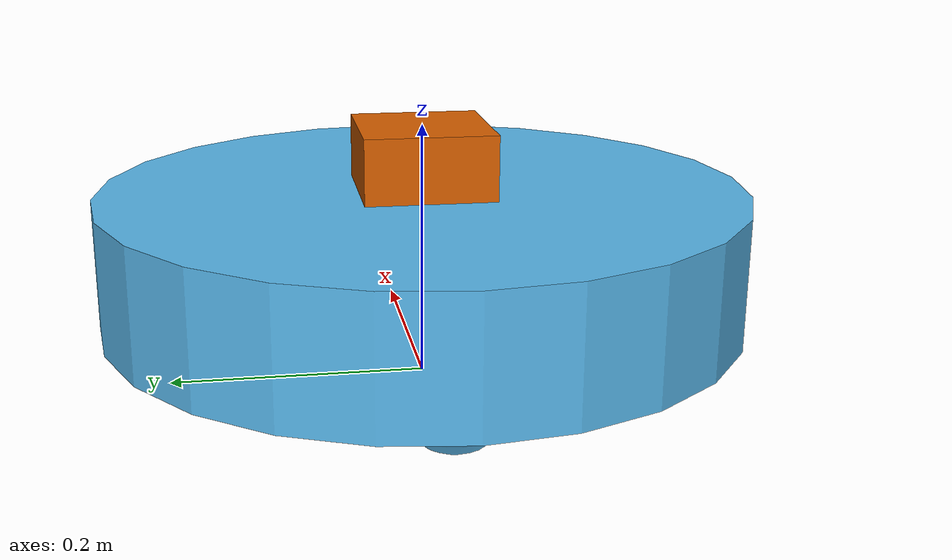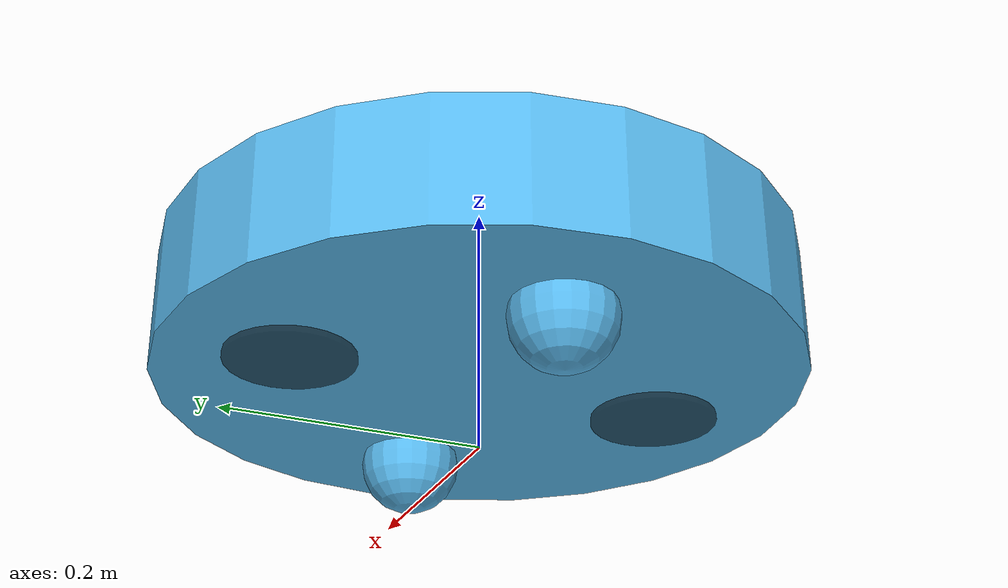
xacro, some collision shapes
<?xml version='1.0'?>
<robot name="custom_bot" xmlns:xacro="http://ros.org/wiki/xacro">

	<!-- body -->
	<xacro:property name="br" value="0.25"/>
	<xacro:property name="bh" value="0.1"/>

	<!-- wheel -->
	<xacro:property name="wr" value="0.05"/>
	<xacro:property name="wd" value="0.3"/>
	<xacro:property name="wt" value="0.01"/>

	<!-- caster -->
	<xacro:property name="cr" value="0.04"/>

    <xacro:include filename="$(find udacity_bot)/urdf/common.xacro"/>
    <xacro:include filename="$(find udacity_bot)/urdf/custom_bot.gazebo"/>

    <link name="robot_footprint"></link>
    <joint name="robot_footprint_joint" type="fixed">
		<origin xyz="0 0 ${wr}" rpy="0 0 0" />
        <parent link="robot_footprint"/>
        <child link="chassis" />
    </joint>

    <link name='chassis'>
        <inertial>
            <mass value="15.0"/>
			<origin xyz="0 0 ${wr}" rpy="0 0 0"/>
			<cylinder_inertia m="15" r="${br}" h="${bh}"/>
        </inertial>

        <collision name='collision'>
			<origin xyz="0 0 ${wr}" rpy="0 0 0"/>
            <geometry>
				<cylinder length="${bh}" radius="${br}"/>
            </geometry>
        </collision>

        <visual name='chassis_visual'>
			<origin xyz="0 0 ${wr}" rpy="0 0 0"/>
            <geometry>
				<cylinder length="${bh}" radius="${br}"/>
            </geometry>
        </visual>

        <collision name='back_caster_collision'>
			<origin xyz="-0.15 0 ${-wr+cr}" rpy=" 0 0 0"/>
            <geometry>
				<sphere radius="${cr}"/>
            </geometry>
        </collision>

        <visual name='back_caster_visual'>
			<origin xyz="-0.15 0 ${-wr+cr}" rpy=" 0 0 0"/>
            <geometry>
				<sphere radius="${cr}"/>
            </geometry>
        </visual>

        <collision name='front_caster_collision'>
			<origin xyz="0.15 0 ${-wr+cr}" rpy=" 0 0 0"/>
            <geometry>
				<sphere radius="${cr}"/>
            </geometry>
        </collision>

        <visual name='front_caster_visual'>
			<origin xyz="0.15 0 ${-wr+cr}" rpy=" 0 0 0"/>
            <geometry>
				<sphere radius="${cr}"/>
            </geometry>
        </visual>
    </link>

	<xacro:wheel wheel_prefix="left" wheel_mass="5" wheel_radius="${wr}" wheel_thickness="${wt}" parent="chassis">
		<origin xyz="0 ${wd/2} 0" rpy="${-pi/2} 0 0"/>
    </xacro:wheel>
	<xacro:wheel wheel_prefix="right" wheel_mass="5" wheel_radius="${wr}" wheel_thickness="${wt}" parent="chassis">
		<origin xyz="0 ${-wd/2} 0" rpy="${-pi/2} 0 0"/>
    </xacro:wheel>

    <link name="camera">
        <inertial>
            <mass value="0.1"/>
            <inertia ixx="1e-6" ixy="0" ixz="0" iyy="1e-6" iyz="0" izz="1e-6"/>
        </inertial>
        <visual>
            <origin xyz="0 0 0" rpy="0 0 0"/>
            <geometry>
                <box size="0.05 0.05 0.05"/>
            </geometry>
        </visual>
        <collision>
            <origin xyz="0 0 0" rpy="0 0 0"/>
            <geometry>
                <box size="0.05 0.05 0.05"/>
            </geometry>
        </collision>
    </link>

    <joint name="camera_joint" type="fixed">
        <parent link="chassis"/>
        <child link="camera"/>
        <origin xyz="0.25 0 0.05" rpy="0 0 0"/>
    </joint>

    <link name="laser">
        <inertial>
            <mass value="0.1"/>
            <inertia ixx="1e-6" ixy="0" ixz="0" iyy="1e-6" iyz="0" izz="1e-6"/>
        </inertial>
        <visual>
            <geometry>
                <mesh filename="package://udacity_bot/meshes/hokuyo.dae"/>
            </geometry>
        </visual>
        <collision>
            <geometry>
                <box size="0.1 0.1 0.1"/>
            </geometry>
        </collision>
    </link>

    <joint name="laser_joint" type="fixed">
        <parent link="chassis"/>
        <child link="laser"/>
        <origin xyz="0.0 0 0.1" rpy="0 0 0"/>
    </joint>

</robot>

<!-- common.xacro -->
<robot name="common" xmlns:xacro="http://ros.org/wiki/xacro">

	<!-- units begin -->
	<xacro:property name="inch" value="0.0254"/>
	<xacro:property name="lb" value="0.453592"/>
	<xacro:property name="deg" value="${pi/180.0}"/>
	<!-- units end -->

    <!-- inertial begin -->
    <xacro:macro name="cylinder_inertia" params="m r h">
		<inertia  ixx="${m*(3*r*r+h*h)/12}" ixy = "0" ixz = "0"
			iyy="${m*(3*r*r+h*h)/12}" iyz = "0"
			izz="${m*r*r/2}"
			/>
	</xacro:macro>
	<xacro:macro name="box_inertia" params="x y z mass">
		<inertia ixx="${0.0833333 * mass * (y*y + z*z)}" ixy="0.0" ixz="0.0"
			iyy="${0.0833333 * mass * (x*x + z*z)}" iyz="0.0"
			izz="${0.0833333 * mass * (x*x + y*y)}" />
	</xacro:macro>

    <xacro:macro name="sphere_inertia" params="r m">
		<inertia ixx="${0.4*m*r*r}" ixy="0.0" ixz="0.0"
			iyy="${0.4*m*r*r}" iyz="0.0"
			izz="${0.4*m*r*r}" />
    </xacro:macro>
    <!-- inertial end -->

	<xacro:macro name="wheel" params="wheel_prefix wheel_mass wheel_radius wheel_thickness parent *origin">
		<link name="${wheel_prefix}_wheel_link">
			<inertial>
				<mass value="${wheel_mass}"/>
				<cylinder_inertia m="${wheel_mass}" r="${wheel_radius}" h="${wheel_thickness}"/>
			</inertial>
			<visual>
				<origin xyz="0 0 0" rpy="${pi/2} 0 0"/>
				<geometry>
					<cylinder length="${wheel_thickness}" radius="${wheel_radius}"/>
				</geometry>
				<material name="black">
					<color rgba="0 0 0 0.5"/>
				</material>
			</visual>
			<collision>
				<origin xyz="0.0 0.0 0" rpy="${pi/2} 0 0"/>
				<geometry>
					<cylinder length="${wheel_thickness}" radius="${wheel_radius}"/>
				</geometry>
			</collision>
		</link>

		<joint name="${wheel_prefix}_wheel_joint" type="continuous">
			<parent link="${parent}"/>
			<child link="${wheel_prefix}_wheel_link"/>
			<xacro:insert_block name="origin"/>
			<axis xyz="0 1 0" rpy="0 0 0"/>
			<limit effort="10000" velocity="1000"/>
			<dynamics damping="1.0" friction="1.0"/>
		</joint>

		<transmission name="${wheel_prefix}_wheel_transmission">
			<type>transmission_interface/SimpleTransmission</type>
			<actuator name="${wheel_prefix}_wheel_motor">
				<hardwareInterface>hardware_interface/VelocityJointInterface</hardwareInterface>
				<mechanicalReduction>1</mechanicalReduction>
			</actuator>
			<joint name="${wheel_prefix}_wheel_joint">
				<hardwareInterface>hardware_interface/VelocityJointInterface</hardwareInterface>
			</joint>
		</transmission>
	</xacro:macro>

</robot>
